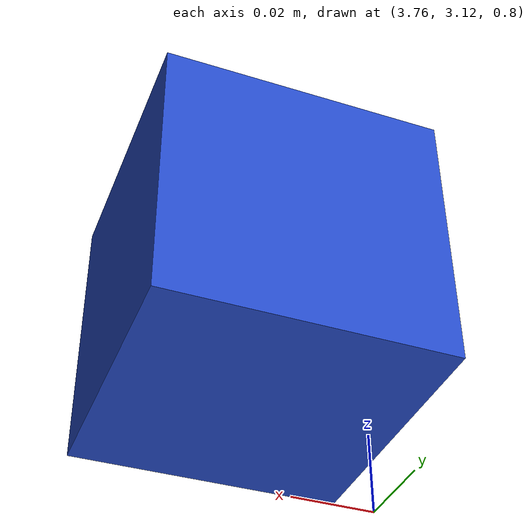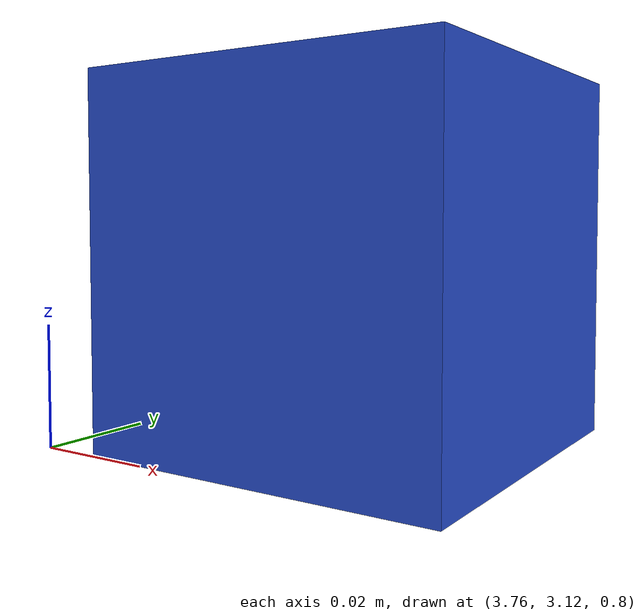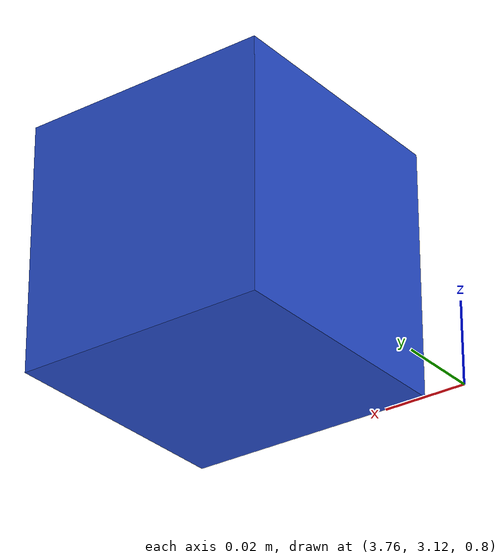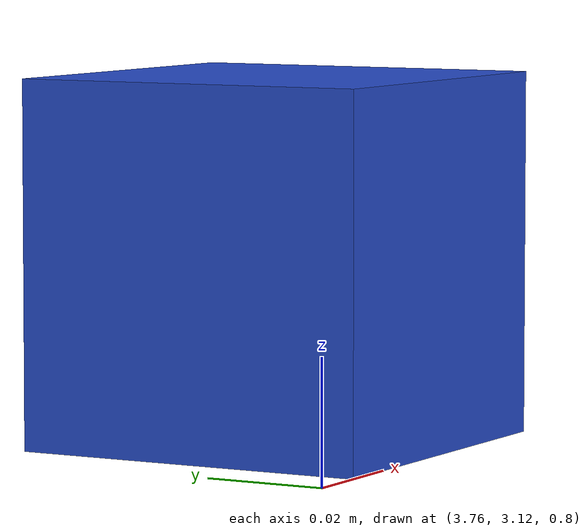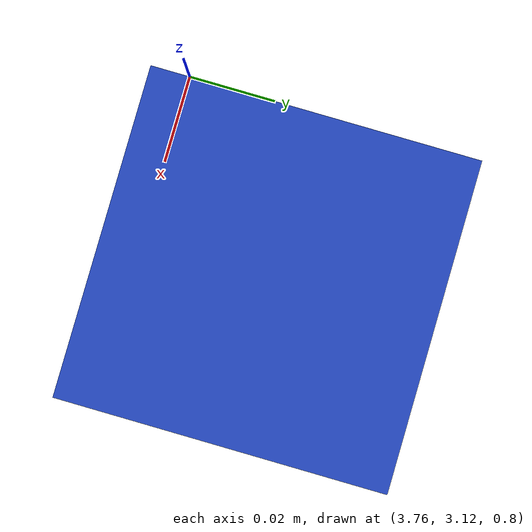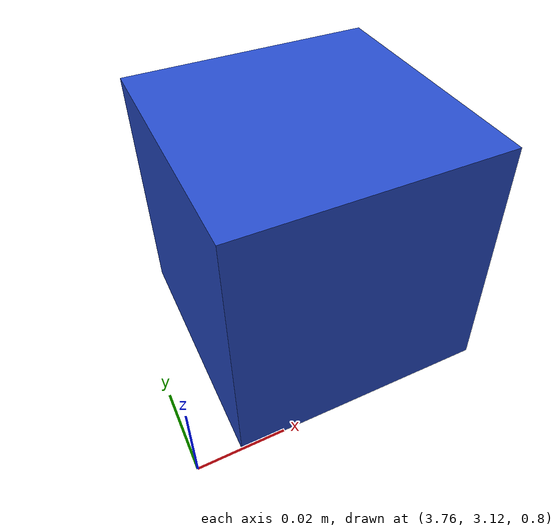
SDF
<?xml version="1.0" ?>
<sdf version='1.4'>
  <model name="cube_s">
      <static>0</static>
      <link name='link'>
	<pose>3.8 3.15 0.83 0 0 0</pose>
        <inertial>
          <mass>0.25</mass>
          <inertia>
            <ixx>0.001</ixx>
            <ixy>0.000000</ixy>
            <ixz>0.000000</ixz>
            <iyy>0.001</iyy>
            <iyz>0.000000</iyz>
            <izz>0.001</izz>
          </inertia>
        </inertial>
        <collision name='collision'>
          <geometry>
            <box>
	      <!-- Alter Size Here -->
              <size>0.060 0.060 0.060</size>
            </box>
          </geometry>
          <surface>
            <friction>
              <ode>
                <mu>30.0</mu>
                <mu2>30.0</mu2>
              </ode>
            </friction>
            <contact>
              <ode>
                <kp>1000000.0</kp>
                <kd>100.0</kd>
                <max_vel>1.0</max_vel>
                <min_depth>0.002</min_depth>
              </ode>
            </contact>
          </surface>
        </collision>
        <visual name='visual'>
          <geometry>
            <box>
              <size>0.060 0.060 0.060</size>
            </box>
          </geometry>
          <material>
            <script>
              <uri>file://media/materials/scripts/gazebo.material</uri>
              <name>Gazebo/Blue</name>
            </script>
          </material>
        </visual>
        <velocity_decay>
          <linear>0.000000</linear>
          <angular>0.000000</angular>
        </velocity_decay>
        <self_collide>0</self_collide>
        <kinematic>0</kinematic>
        <gravity>1</gravity>
      </link>
  </model>
</sdf>
